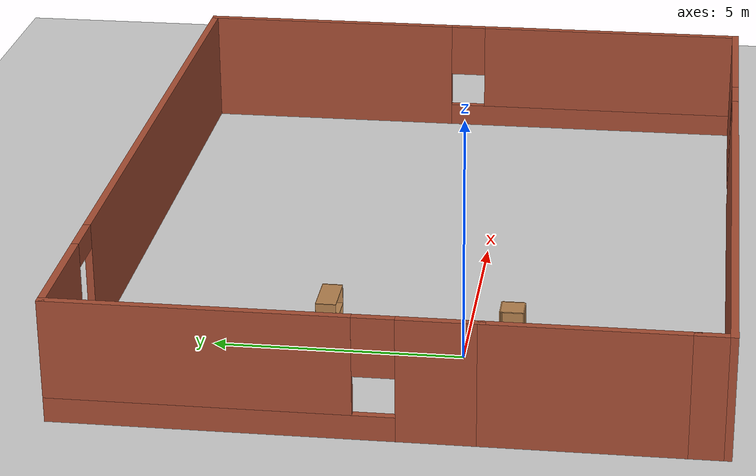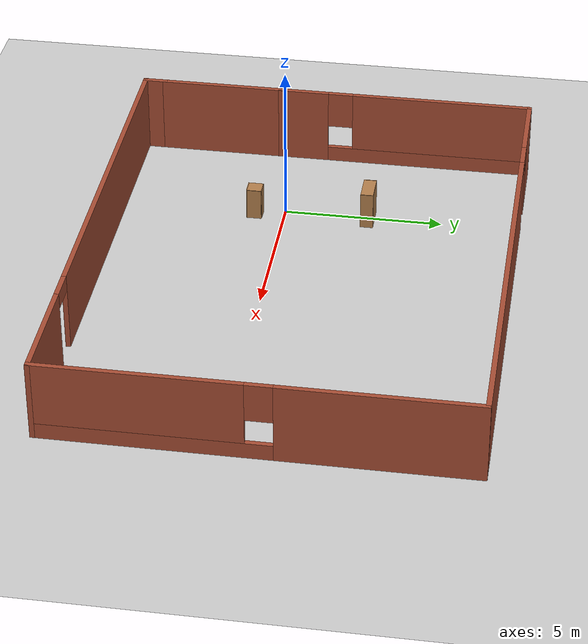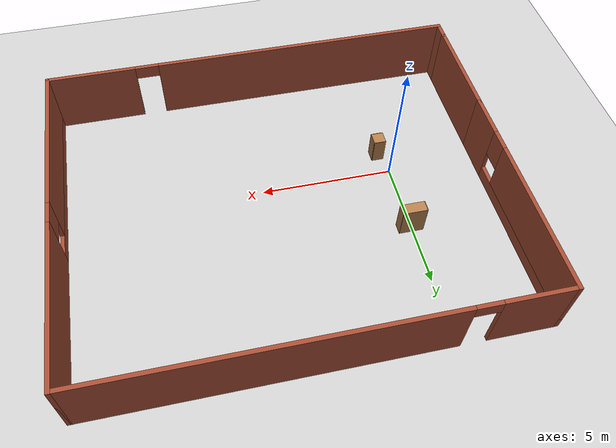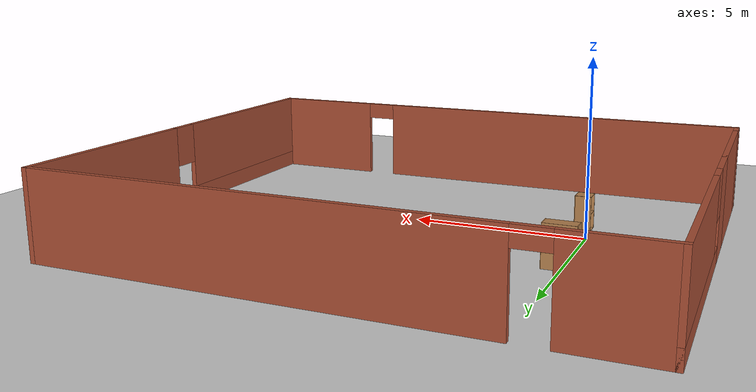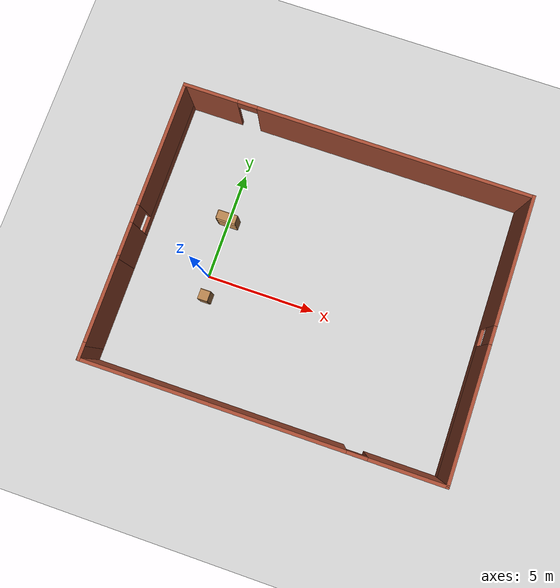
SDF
<sdf version="1.7">
 <world name="default">
  <light name="sun" type="directional">
   <pose>0 0 10 0 -0 0</pose>
   <diffuse>0.8 0.8 0.8 1</diffuse>
   <specular>0.2 0.2 0.2 1</specular>
   <attenuation>
    <range>1000</range>
    <constant>0.9</constant>
    <linear>0.01</linear>
    <quadratic>0.001</quadratic>
   </attenuation>
   <direction>-0.5 0.1 -0.9</direction>
   <spot><inner_angle>0</inner_angle><outer_angle>0</outer_angle><falloff>0</falloff></spot>
  </light>
  <model name="ground_plane">
   <static>1</static>
   <link name="link">
    <collision name="collision">
     <geometry><plane><normal>0 0 1</normal><size>100 100</size></plane></geometry>
     <surface><friction><ode><mu>100</mu><mu2>50</mu2></ode></friction></surface>
    </collision>
    <visual name="visual">
     <cast_shadows>0</cast_shadows>
     <geometry><plane><normal>0 0 1</normal><size>100 100</size></plane></geometry>
     <material>
      <script><uri>file://media/materials/scripts/gazebo.material</uri><name>Gazebo/Grey</name></script>
     </material>
    </visual>
   </link>
  </model>
  <gravity>0 0 -9.8</gravity>
  <magnetic_field>6e-06 2.3e-05 -4.2e-05</magnetic_field>
  <atmosphere type="adiabatic"/>
  <physics type="ode">
   <max_step_size>0.001</max_step_size>
   <real_time_factor>1</real_time_factor>
   <real_time_update_rate>1000</real_time_update_rate>
  </physics>
  <scene><ambient>0.4 0.4 0.4 1</ambient><background>0.7 0.7 0.7 1</background><shadows>1</shadows></scene>
  <audio><device>default</device></audio>
  <spherical_coordinates>
   <surface_model>EARTH_WGS84</surface_model>
   <latitude_deg>0</latitude_deg>
   <longitude_deg>0</longitude_deg>
   <elevation>0</elevation>
   <heading_deg>0</heading_deg>
  </spherical_coordinates>
  <model name="bookshelf">
   <static>1</static>
   <link name="link">
    <inertial><mass>1</mass></inertial>
    <collision name="back">
     <pose>0 0.005 0.6 0 -0 0</pose>
     <geometry><box><size>0.9 0.01 1.2</size></box></geometry>
    </collision>
    <visual name="visual1">
     <pose>0 0.005 0.6 0 -0 0</pose>
     <geometry><box><size>0.9 0.01 1.2</size></box></geometry>
     <material>
      <script><uri>file://media/materials/scripts/gazebo.material</uri><name>Gazebo/Wood</name></script>
     </material>
    </visual>
    <collision name="left_side">
     <pose>0.45 -0.195 0.6 0 -0 0</pose>
     <geometry><box><size>0.02 0.4 1.2</size></box></geometry>
    </collision>
    <visual name="visual2">
     <pose>0.45 -0.195 0.6 0 -0 0</pose>
     <geometry><box><size>0.02 0.4 1.2</size></box></geometry>
     <material>
      <script><uri>file://media/materials/scripts/gazebo.material</uri><name>Gazebo/Wood</name></script>
     </material>
    </visual>
    <collision name="right_side">
     <pose>-0.45 -0.195 0.6 0 -0 0</pose>
     <geometry><box><size>0.02 0.4 1.2</size></box></geometry>
    </collision>
    <visual name="visual3">
     <pose>-0.45 -0.195 0.6 0 -0 0</pose>
     <geometry><box><size>0.02 0.4 1.2</size></box></geometry>
     <material>
      <script><uri>file://media/materials/scripts/gazebo.material</uri><name>Gazebo/Wood</name></script>
     </material>
    </visual>
    <collision name="bottom">
     <pose>0 -0.195 0.03 0 -0 0</pose>
     <geometry><box><size>0.88 0.4 0.06</size></box></geometry>
    </collision>
    <visual name="visual4">
     <pose>0 -0.195 0.03 0 -0 0</pose>
     <geometry><box><size>0.88 0.4 0.06</size></box></geometry>
     <material>
      <script><uri>file://media/materials/scripts/gazebo.material</uri><name>Gazebo/Wood</name></script>
     </material>
    </visual>
    <collision name="top">
     <pose>0 -0.195 1.19 0 -0 0</pose>
     <geometry><box><size>0.88 0.4 0.02</size></box></geometry>
    </collision>
    <visual name="visual5">
     <pose>0 -0.195 1.19 0 -0 0</pose>
     <geometry><box><size>0.88 0.4 0.02</size></box></geometry>
     <material>
      <script><uri>file://media/materials/scripts/gazebo.material</uri><name>Gazebo/Wood</name></script>
     </material>
    </visual>
    <collision name="low_shelf">
     <pose>0 -0.195 0.43 0 -0 0</pose>
     <geometry><box><size>0.88 0.4 0.02</size></box></geometry>
    </collision>
    <visual name="visual6">
     <pose>0 -0.195 0.43 0 -0 0</pose>
     <geometry><box><size>0.88 0.4 0.02</size></box></geometry>
     <material>
      <script><uri>file://media/materials/scripts/gazebo.material</uri><name>Gazebo/Wood</name></script>
     </material>
    </visual>
    <collision name="high_shelf">
     <pose>0 -0.195 0.8 0 -0 0</pose>
     <geometry><box><size>0.88 0.4 0.02</size></box></geometry>
    </collision>
    <visual name="visual7">
     <pose>0 -0.195 0.8 0 -0 0</pose>
     <geometry><box><size>0.88 0.4 0.02</size></box></geometry>
     <material>
      <script><uri>file://media/materials/scripts/gazebo.material</uri><name>Gazebo/Wood</name></script>
     </material>
    </visual>
   </link>
   <pose>0.050704 2.85881 0 0 -0 0</pose>
  </model>
  <model name="cabinet">
   <static>1</static>
   <link name="cabinet_bottom_plate">
    <inertial>
     <pose>0 0 -1 0 -0 0</pose>
     <inertia><ixx>2.05</ixx><ixy>0</ixy><ixz>0</ixz><iyy>2.05</iyy><iyz>0</iyz><izz>2.05</izz></inertia>
     <mass>25</mass>
    </inertial>
    <collision name="cabinet_bottom_plate_geom">
     <pose>0 0 0.01 0 -0 0</pose>
     <geometry><box><size>0.45 0.45 0.02</size></box></geometry>
    </collision>
    <visual name="cabinet_bottom_plate_geom_visual">
     <pose>0 0 0.01 0 -0 0</pose>
     <geometry><box><size>0.45 0.45 0.02</size></box></geometry>
     <material>
      <script><uri>file://media/materials/scripts/gazebo.material</uri><name>Gazebo/Wood</name></script>
     </material>
    </visual>
    <collision name="cabinet_bottom_plate_geom_cabinet_back_plate">
     <pose>0.235 0 0.51 0 -0 0</pose>
     <geometry><box><size>0.02 0.45 1.02</size></box></geometry>
    </collision>
    <visual name="cabinet_bottom_plate_geom_cabinet_back_plate_visual">
     <pose>0.235 0 0.51 0 -0 0</pose>
     <geometry><box><size>0.02 0.45 1.02</size></box></geometry>
     <material>
      <script><uri>file://media/materials/scripts/gazebo.material</uri><name>Gazebo/Wood</name></script>
     </material>
    </visual>
    <collision name="cabinet_bottom_plate_geom_cabinet_left_plate">
     <pose>0 0.235 0.51 0 -0 0</pose>
     <geometry><box><size>0.45 0.02 1.02</size></box></geometry>
    </collision>
    <visual name="cabinet_bottom_plate_geom_cabinet_left_plate_visual">
     <pose>0 0.235 0.51 0 -0 0</pose>
     <geometry><box><size>0.45 0.02 1.02</size></box></geometry>
     <material>
      <script><uri>file://media/materials/scripts/gazebo.material</uri><name>Gazebo/Wood</name></script>
     </material>
    </visual>
    <collision name="cabinet_bottom_plate_geom_cabinet_middle_plate">
     <pose>0 0 0.51 0 -0 0</pose>
     <geometry><box><size>0.45 0.45 0.02</size></box></geometry>
    </collision>
    <visual name="cabinet_bottom_plate_geom_cabinet_middle_plate_visual">
     <pose>0 0 0.51 0 -0 0</pose>
     <geometry><box><size>0.45 0.45 0.02</size></box></geometry>
     <material>
      <script><uri>file://media/materials/scripts/gazebo.material</uri><name>Gazebo/Wood</name></script>
     </material>
    </visual>
    <collision name="cabinet_bottom_plate_geom_cabinet_right_plate">
     <pose>0 -0.235 0.51 0 -0 0</pose>
     <geometry><box><size>0.45 0.02 1.02</size></box></geometry>
    </collision>
    <visual name="cabinet_bottom_plate_geom_cabinet_right_plate_visual">
     <pose>0 -0.235 0.51 0 -0 0</pose>
     <geometry><box><size>0.45 0.02 1.02</size></box></geometry>
     <material>
      <script><uri>file://media/materials/scripts/gazebo.material</uri><name>Gazebo/Wood</name></script>
     </material>
    </visual>
    <collision name="cabinet_bottom_plate_geom_cabinet_top_plate">
     <pose>0 0 1.01 0 -0 0</pose>
     <geometry><box><size>0.45 0.45 0.02</size></box></geometry>
    </collision>
    <visual name="cabinet_bottom_plate_geom_cabinet_top_plate_visual">
     <pose>0 0 1.01 0 -0 0</pose>
     <geometry><box><size>0.45 0.45 0.02</size></box></geometry>
     <material>
      <script><uri>file://media/materials/scripts/gazebo.material</uri><name>Gazebo/Wood</name></script>
     </material>
    </visual>
   </link>
   <pose>0.259199 -0.935349 0 0 -0 0</pose>
  </model>
  <model name="test">
   <pose>4.495 1.12 0 0 -0 0</pose>
   <link name="Wall_1">
    <collision name="Wall_1_Collision">
     <geometry><box><size>4 0.15 2.5</size></box></geometry>
     <pose>0 0 1.25 0 -0 0</pose>
    </collision>
    <visual name="Wall_1_Visual">
     <pose>0 0 1.25 0 -0 0</pose>
     <geometry><box><size>4 0.15 2.5</size></box></geometry>
     <material>
      <script><uri>file://media/materials/scripts/gazebo.material</uri><name>Gazebo/Bricks</name></script>
      <ambient>1 1 1 1</ambient>
     </material>
     <meta><layer>0</layer></meta>
    </visual>
    <pose>-7.925 -3.725 0 0 -0 1.5708</pose>
   </link>
   <link name="Wall_3">
    <pose>-7.925 2.25 0 0 -0 1.5708</pose>
    <visual name="Wall_3_Visual_0">
     <pose>-3.30174 0 1.25 0 -0 0</pose>
     <geometry><box><size>1.64651 0.15 2.5</size></box></geometry>
     <material>
      <script><uri>file://media/materials/scripts/gazebo.material</uri><name>Gazebo/Bricks</name></script>
      <ambient>1 1 1 1</ambient>
     </material>
     <meta><layer>0</layer></meta>
    </visual>
    <collision name="Wall_3_Collision_0">
     <geometry><box><size>1.64651 0.15 2.5</size></box></geometry>
     <pose>-3.30174 0 1.25 0 -0 0</pose>
    </collision>
    <visual name="Wall_3_Visual_1">
     <pose>0.823256 0 0.25 0 -0 0</pose>
     <geometry><box><size>6.60349 0.15 0.5</size></box></geometry>
     <material>
      <script><uri>file://media/materials/scripts/gazebo.material</uri><name>Gazebo/Bricks</name></script>
      <ambient>1 1 1 1</ambient>
     </material>
     <meta><layer>0</layer></meta>
    </visual>
    <collision name="Wall_3_Collision_1">
     <geometry><box><size>6.60349 0.15 0.5</size></box></geometry>
     <pose>0.823256 0 0.25 0 -0 0</pose>
    </collision>
    <visual name="Wall_3_Visual_2">
     <pose>1.22326 0 1.5 0 -0 0</pose>
     <geometry><box><size>5.80349 0.15 2</size></box></geometry>
     <material>
      <script><uri>file://media/materials/scripts/gazebo.material</uri><name>Gazebo/Bricks</name></script>
      <ambient>1 1 1 1</ambient>
     </material>
     <meta><layer>0</layer></meta>
    </visual>
    <collision name="Wall_3_Collision_2">
     <geometry><box><size>5.80349 0.15 2</size></box></geometry>
     <pose>1.22326 0 1.5 0 -0 0</pose>
    </collision>
    <visual name="Wall_3_Visual_3">
     <pose>-2.07849 0 1.9 0 -0 0</pose>
     <geometry><box><size>0.8 0.15 1.2</size></box></geometry>
     <material>
      <script><uri>file://media/materials/scripts/gazebo.material</uri><name>Gazebo/Bricks</name></script>
      <ambient>1 1 1 1</ambient>
     </material>
     <meta><layer>0</layer></meta>
    </visual>
    <collision name="Wall_3_Collision_3">
     <geometry><box><size>0.8 0.15 1.2</size></box></geometry>
     <pose>-2.07849 0 1.9 0 -0 0</pose>
    </collision>
   </link>
   <link name="Wall_4">
    <pose>-0 6.3 0 0 -0 0</pose>
    <visual name="Wall_4_Visual_0">
     <pose>-6.73559 0 1.25 0 -0 0</pose>
     <geometry><box><size>2.52883 0.15 2.5</size></box></geometry>
     <material>
      <script><uri>file://media/materials/scripts/gazebo.material</uri><name>Gazebo/Bricks</name></script>
      <ambient>1 1 1 1</ambient>
     </material>
     <meta><layer>0</layer></meta>
    </visual>
    <collision name="Wall_4_Collision_0">
     <geometry><box><size>2.52883 0.15 2.5</size></box></geometry>
     <pose>-6.73559 0 1.25 0 -0 0</pose>
    </collision>
    <visual name="Wall_4_Visual_1">
     <pose>1.71441 0 1.25 0 -0 0</pose>
     <geometry><box><size>12.5712 0.15 2.5</size></box></geometry>
     <material>
      <script><uri>file://media/materials/scripts/gazebo.material</uri><name>Gazebo/Bricks</name></script>
      <ambient>1 1 1 1</ambient>
     </material>
     <meta><layer>0</layer></meta>
    </visual>
    <collision name="Wall_4_Collision_1">
     <geometry><box><size>12.5712 0.15 2.5</size></box></geometry>
     <pose>1.71441 0 1.25 0 -0 0</pose>
    </collision>
    <visual name="Wall_4_Visual_2">
     <pose>-5.02117 0 2.25 0 -0 0</pose>
     <geometry><box><size>0.9 0.15 0.5</size></box></geometry>
     <material>
      <script><uri>file://media/materials/scripts/gazebo.material</uri><name>Gazebo/Bricks</name></script>
      <ambient>1 1 1 1</ambient>
     </material>
     <meta><layer>0</layer></meta>
    </visual>
    <collision name="Wall_4_Collision_2">
     <geometry><box><size>0.9 0.15 0.5</size></box></geometry>
     <pose>-5.02117 0 2.25 0 -0 0</pose>
    </collision>
   </link>
   <link name="Wall_5">
    <pose>7.925 0 0 0 -0 -1.5708</pose>
    <visual name="Wall_5_Visual_0">
     <pose>-3.43303 0 1.25 0 -0 0</pose>
     <geometry><box><size>5.88394 0.15 2.5</size></box></geometry>
     <material>
      <script><uri>file://media/materials/scripts/gazebo.material</uri><name>Gazebo/Bricks</name></script>
      <ambient>1 1 1 1</ambient>
     </material>
     <meta><layer>0</layer></meta>
    </visual>
    <collision name="Wall_5_Collision_0">
     <geometry><box><size>5.88394 0.15 2.5</size></box></geometry>
     <pose>-3.43303 0 1.25 0 -0 0</pose>
    </collision>
    <visual name="Wall_5_Visual_1">
     <pose>2.94197 0 0.25 0 -0 0</pose>
     <geometry><box><size>6.86606 0.15 0.5</size></box></geometry>
     <material>
      <script><uri>file://media/materials/scripts/gazebo.material</uri><name>Gazebo/Bricks</name></script>
      <ambient>1 1 1 1</ambient>
     </material>
     <meta><layer>0</layer></meta>
    </visual>
    <collision name="Wall_5_Collision_1">
     <geometry><box><size>6.86606 0.15 0.5</size></box></geometry>
     <pose>2.94197 0 0.25 0 -0 0</pose>
    </collision>
    <visual name="Wall_5_Visual_2">
     <pose>3.34197 0 1.5 0 -0 0</pose>
     <geometry><box><size>6.06606 0.15 2</size></box></geometry>
     <material>
      <script><uri>file://media/materials/scripts/gazebo.material</uri><name>Gazebo/Bricks</name></script>
      <ambient>1 1 1 1</ambient>
     </material>
     <meta><layer>0</layer></meta>
    </visual>
    <collision name="Wall_5_Collision_2">
     <geometry><box><size>6.06606 0.15 2</size></box></geometry>
     <pose>3.34197 0 1.5 0 -0 0</pose>
    </collision>
    <visual name="Wall_5_Visual_3">
     <pose>-0.091057 0 1.9 0 -0 0</pose>
     <geometry><box><size>0.8 0.15 1.2</size></box></geometry>
     <material>
      <script><uri>file://media/materials/scripts/gazebo.material</uri><name>Gazebo/Bricks</name></script>
      <ambient>1 1 1 1</ambient>
     </material>
     <meta><layer>0</layer></meta>
    </visual>
    <collision name="Wall_5_Collision_3">
     <geometry><box><size>0.8 0.15 1.2</size></box></geometry>
     <pose>-0.091057 0 1.9 0 -0 0</pose>
    </collision>
   </link>
   <link name="Wall_6">
    <pose>-0 -6.3 0 0 -0 3.14159</pose>
    <visual name="Wall_6_Visual_0">
     <pose>-6.28019 0 1.25 0 -0 0</pose>
     <geometry><box><size>3.43961 0.15 2.5</size></box></geometry>
     <material>
      <script><uri>file://media/materials/scripts/gazebo.material</uri><name>Gazebo/Bricks</name></script>
      <ambient>1 1 1 1</ambient>
     </material>
     <meta><layer>0</layer></meta>
    </visual>
    <collision name="Wall_6_Collision_0">
     <geometry><box><size>3.43961 0.15 2.5</size></box></geometry>
     <pose>-6.28019 0 1.25 0 -0 0</pose>
    </collision>
    <visual name="Wall_6_Visual_1">
     <pose>2.16981 0 1.25 0 -0 0</pose>
     <geometry><box><size>11.6604 0.15 2.5</size></box></geometry>
     <material>
      <script><uri>file://media/materials/scripts/gazebo.material</uri><name>Gazebo/Bricks</name></script>
      <ambient>1 1 1 1</ambient>
     </material>
     <meta><layer>0</layer></meta>
    </visual>
    <collision name="Wall_6_Collision_1">
     <geometry><box><size>11.6604 0.15 2.5</size></box></geometry>
     <pose>2.16981 0 1.25 0 -0 0</pose>
    </collision>
    <visual name="Wall_6_Visual_2">
     <pose>-4.11039 0 2.25 0 -0 0</pose>
     <geometry><box><size>0.9 0.15 0.5</size></box></geometry>
     <material>
      <script><uri>file://media/materials/scripts/gazebo.material</uri><name>Gazebo/Bricks</name></script>
      <ambient>1 1 1 1</ambient>
     </material>
     <meta><layer>0</layer></meta>
    </visual>
    <collision name="Wall_6_Collision_2">
     <geometry><box><size>0.9 0.15 0.5</size></box></geometry>
     <pose>-4.11039 0 2.25 0 -0 0</pose>
    </collision>
   </link>
   <link name="Wall_7">
    <collision name="Wall_7_Collision">
     <geometry><box><size>0.8 0.15 2.5</size></box></geometry>
     <pose>0 0 1.25 0 -0 0</pose>
    </collision>
    <visual name="Wall_7_Visual">
     <pose>0 0 1.25 0 -0 0</pose>
     <geometry><box><size>0.8 0.15 2.5</size></box></geometry>
     <material>
      <script><uri>file://media/materials/scripts/gazebo.material</uri><name>Gazebo/Bricks</name></script>
      <ambient>1 1 1 1</ambient>
     </material>
     <meta><layer>0</layer></meta>
    </visual>
    <pose>-7.925 -5.975 0 0 -0 1.5708</pose>
   </link>
   <static>1</static>
  </model>
 </world>
</sdf>
